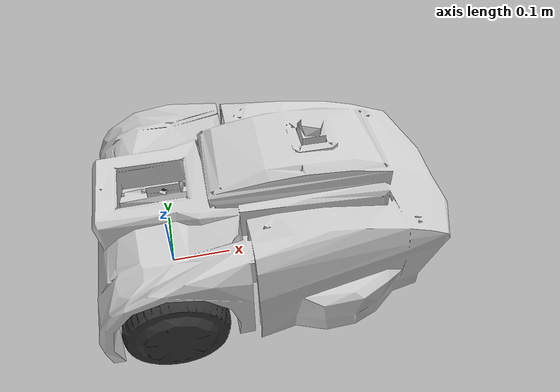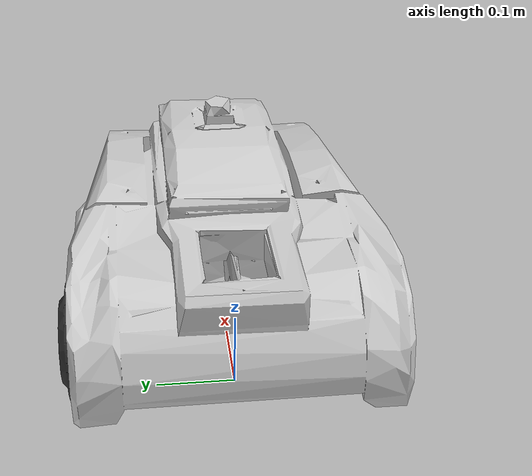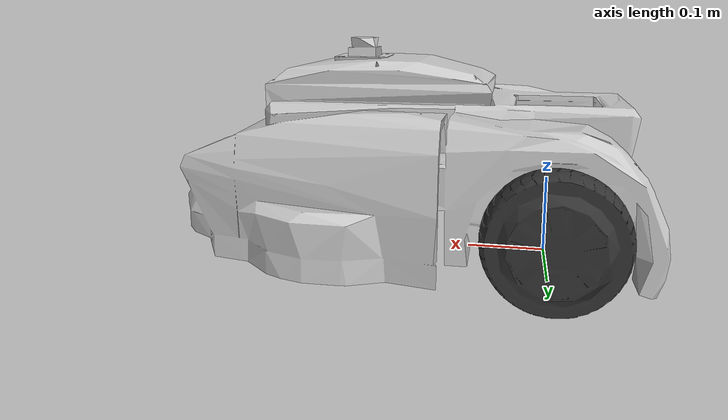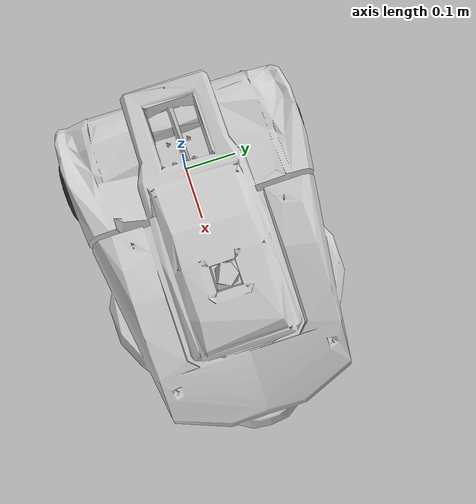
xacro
<?xml version="1.0"?>
<robot xmlns:xacro="http://www.ros.org/wiki/xacro" name="HoverMower">

  <xacro:property name="base_width" value="0.28"/>
  <xacro:property name="base_len" value="0.536"/>
  <xacro:property name="base_height" value="0.26"/>
  <xacro:property name="wheel_radius" value="0.085"/>
  <xacro:property name="base_wheel_gap" value="0.01"/>
  <xacro:property name="wheel_separation" value="0.36"/>
  <xacro:property name="wheel_joint_offset" value="0"/>
  <xacro:property name="caster_wheel_radius" value="0.035"/>
  <xacro:property name="caster_wheel_joint_offset" value="0.12"/>

  <material name="blue">
    <color rgba="0 0 0.8 1"/>
  </material>
  <material name="black">
    <color rgba="0 0 0 1"/>
  </material>
  <material name="darkgray">
    <color rgba="0.2 0.2 0.2 1"/>
  </material>
  <material name="lightgray">
    <color rgba="0.8 0.8 0.8 1"/>
  </material>
  <material name="white">
    <color rgba="1 1 1 1"/>
  </material>
  <material name="red">
    <color rgba="0.8 0.0 0.0 1.0"/>
  </material>

  <xacro:macro name="box_inertia" params="m w h d">
    <inertial>
      <mass value="${m}"/>
      <inertia ixx="${m / 12.0 * (d*d + h*h)}" ixy="0.0" ixz="0.0" iyy="${m / 12.0 * (w*w + h*h)}" iyz="0.0" izz="${m / 12.0 * (w*w + d*d)}"/>
    </inertial>
  </xacro:macro>

  <link name="base_footprint">
    <xacro:box_inertia m="8" w="0.001" h="0.001" d="0.001"/>
    <visual>
      <origin xyz="0 0 0" rpy="0 0 0" />
      <material name="white"/>
        <geometry>
            <box size="0.001 0.001 0.001" />
        </geometry>
    </visual>
  </link>

  <link name="base_link">
    <xacro:box_inertia m="1" w="${base_len}" h="${base_width}" d="0.01"/>
    <visual>
      <material name="lightgray"/>
      <geometry>
        <mesh filename="package://rosmower/meshes/robot_body.dae" />
      </geometry>
    </visual>
    <collision>
      <geometry>
        <mesh filename="package://rosmower/meshes/robot_body.dae"/>
      </geometry>
    </collision>
  </link>

  <joint name="base_link_joint" type="fixed">
    <origin xyz="0 0 0.08" rpy="0 0 0" />
    <parent link="base_footprint"/>
    <child link="base_link" />
  </joint>

  <xacro:macro name="wheel" params="prefix reflect rotate">
    <link name="${prefix}_wheel">
      <visual>
        <material name="darkgray"/>
        <geometry>
	        <mesh filename="package://rosmower/meshes/wheel.dae" />
        </geometry>
    </visual>
    <collision>
      <geometry>
        <mesh filename="package://rosmower/meshes/wheel.dae" />
      </geometry>
    </collision>
    </link>

    <joint name="${prefix}_wheel" type="continuous">
      <axis xyz="0 1 0" rpy="0 0 0" />
      <parent link="base_link"/>
      <child link="${prefix}_wheel"/>
      <origin xyz="${wheel_joint_offset} ${((base_width/2)+base_wheel_gap)*reflect} 0" rpy="0 0 ${0+rotate}"/>
    </joint>
  </xacro:macro>

  <xacro:wheel prefix="left" reflect="1" rotate="0"/>
  <xacro:wheel prefix="right" reflect="-1" rotate="3.14159"/>

  <joint name="imu_joint" type="fixed">
    <parent link="base_link" />
    <child link="imu" />
    <origin xyz="0.092 0.0 0.105" rpy="0 0 0" />
  </joint>
  <link name="imu" />

  <joint name="lidar_joint" type="fixed">
    <parent link="base_link" />
    <child link="lidar_frame" />
    <origin xyz="0.242 0.0 0.195" rpy="0 0 0" />
  </joint>
  <link name="lidar_frame" type="fixed"/>

  <joint name="gps_joint" type="fixed">
    <parent link="base_link" />
    <child link="gps_frame" />
    <origin xyz="0.0 0.118 0.202" rpy="0 0 0" />
  </joint>
  <link name="gps_frame" type="fixed"/>

  <joint name="camera_joint" type="fixed">
    <origin xyz="0.35 0 0.117" rpy="0 0 0" />
    <parent link="base_link" />
    <child link="camera_link" />
  </joint>
  <link name="camera_link" type="fixed"/>

  <joint name="perimeter_left_joint" type="fixed">
    <origin xyz="0.385 0.081 0.025" rpy="0 0 0" />
    <parent link="base_link" />
    <child link="perimeter_left" />
  </joint>
  <link name="perimeter_left" type="fixed"/>

  <joint name="perimeter_right_joint" type="fixed">
    <origin xyz="0.385 -0.081 0.025" rpy="0 0 0" />
    <parent link="base_link" />
    <child link="perimeter_right" />
  </joint>
  <link name="perimeter_right" type="fixed"/>

  <joint name="bumper_left_joint" type="fixed">
    <origin xyz="0.45 0.101 0.040" rpy="0 0 0" />
    <parent link="base_link" />
    <child link="bumper_left" />
  </joint>
  <link name="bumper_left" type="fixed"/>

  <joint name="bumper_right_joint" type="fixed">
    <origin xyz="0.45 -0.101 0.040" rpy="0 0 0" />
    <parent link="base_link" />
    <child link="bumper_right" />
  </joint>
  <link name="bumper_right" type="fixed"/>

</robot>
